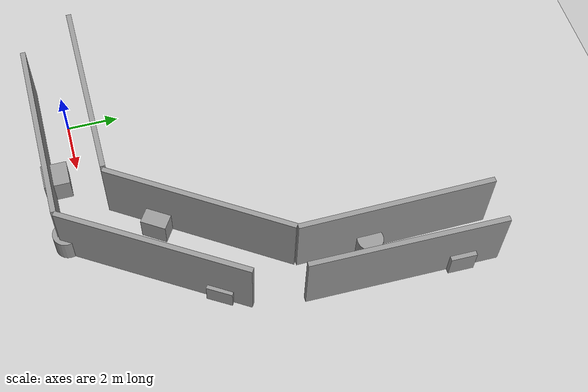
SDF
<sdf version="1.4">
 <world name="default">
  <light name="sun" type="directional">
   <pose>0 0 10 0 -0 0</pose>
   <diffuse>0.8 0.8 0.8 1</diffuse>
   <specular>0.2 0.2 0.2 1</specular>
   <attenuation>
    <range>1000</range>
    <constant>0.9</constant>
    <linear>0.01</linear>
    <quadratic>0.001</quadratic>
   </attenuation>
   <direction>-0.5 0.1 -0.9</direction>
  </light>
  <model name="ground_plane">
   <static>1</static>
   <link name="link">
    <collision name="collision">
     <geometry><plane><normal>0 0 1</normal><size>100 100</size></plane></geometry>
     <surface><friction><ode><mu>100</mu><mu2>50</mu2></ode></friction></surface>
    </collision>
    <visual name="visual">
     <cast_shadows>0</cast_shadows>
     <geometry><plane><normal>0 0 1</normal><size>100 100</size></plane></geometry>
     <material>
      <script><uri>file://media/materials/scripts/gazebo.material</uri><name>Gazebo/Grey</name></script>
     </material>
    </visual>
    <velocity_decay><linear>0</linear><angular>0</angular></velocity_decay>
   </link>
  </model>
  <physics type="ode">
   <max_step_size>0.001</max_step_size>
   <real_time_factor>1</real_time_factor>
   <real_time_update_rate>1000</real_time_update_rate>
   <gravity>0 0 -9.8</gravity>
  </physics>
  <scene><ambient>0.4 0.4 0.4 1</ambient><background>0.7 0.7 0.7 1</background><shadows>1</shadows></scene>
  <spherical_coordinates>
   <surface_model>EARTH_WGS84</surface_model>
   <latitude_deg>0</latitude_deg>
   <longitude_deg>0</longitude_deg>
   <elevation>0</elevation>
   <heading_deg>0</heading_deg>
  </spherical_coordinates>
  <model name="grey_wall">
   <static>1</static>
   <link name="link">
    <pose>0 0 1.4 0 -0 0</pose>
    <collision name="collision"><geometry><box><size>7.5 0.2 2.8</size></box></geometry></collision>
    <visual name="visual">
     <cast_shadows>0</cast_shadows>
     <geometry><box><size>7.5 0.2 2.8</size></box></geometry>
     <material>
      <script>
       <uri>model://grey_wall/materials/scripts</uri>
       <uri>model://grey_wall/materials/textures</uri>
       <name>vrc/grey_wall</name>
      </script>
     </material>
    </visual>
    <velocity_decay><linear>0</linear><angular>0</angular></velocity_decay>
   </link>
   <pose>0.226846 1 0 0 -0 0</pose>
  </model>
  <model name="grey_wall_0">
   <static>1</static>
   <link name="link">
    <pose>0 0 1.4 0 -0 0</pose>
    <collision name="collision"><geometry><box><size>7.5 0.2 2.8</size></box></geometry></collision>
    <visual name="visual">
     <cast_shadows>0</cast_shadows>
     <geometry><box><size>7.5 0.2 2.8</size></box></geometry>
     <material>
      <script>
       <uri>model://grey_wall/materials/scripts</uri>
       <uri>model://grey_wall/materials/textures</uri>
       <name>vrc/grey_wall</name>
      </script>
     </material>
    </visual>
    <velocity_decay><linear>0</linear><angular>0</angular></velocity_decay>
   </link>
   <pose>1.69471 -1.06844 0 0 -0 0</pose>
  </model>
  <model name="grey_wall_1">
   <static>1</static>
   <link name="link">
    <pose>0 0 1.4 0 -0 0</pose>
    <collision name="collision"><geometry><box><size>7.5 0.2 2.8</size></box></geometry></collision>
    <visual name="visual">
     <cast_shadows>0</cast_shadows>
     <geometry><box><size>7.5 0.2 2.8</size></box></geometry>
     <material>
      <script>
       <uri>model://grey_wall/materials/scripts</uri>
       <uri>model://grey_wall/materials/textures</uri>
       <name>vrc/grey_wall</name>
      </script>
     </material>
    </visual>
    <velocity_decay><linear>0</linear><angular>0</angular></velocity_decay>
   </link>
   <pose>6.1599 4.08742 0 0 -0 0.988554</pose>
  </model>
  <model name="grey_wall_2">
   <static>1</static>
   <link name="link">
    <pose>0 0 1.4 0 -0 0</pose>
    <collision name="collision"><geometry><box><size>7.5 0.2 2.8</size></box></geometry></collision>
    <visual name="visual">
     <cast_shadows>0</cast_shadows>
     <geometry><box><size>7.5 0.2 2.8</size></box></geometry>
     <material>
      <script>
       <uri>model://grey_wall/materials/scripts</uri>
       <uri>model://grey_wall/materials/textures</uri>
       <name>vrc/grey_wall</name>
      </script>
     </material>
    </visual>
    <velocity_decay><linear>0</linear><angular>0</angular></velocity_decay>
   </link>
   <pose>7.51387 2.09434 0 0 -0 1.00298</pose>
  </model>
  <model name="unit_box_1">
   <pose>2.70662 -0.830688 0.499997 4.03897e-28 1e-06 -3e-06</pose>
   <link name="link">
    <inertial>
     <mass>1</mass>
     <inertia><ixx>1</ixx><ixy>0</ixy><ixz>0</ixz><iyy>1</iyy><iyz>0</iyz><izz>1</izz></inertia>
    </inertial>
    <collision name="collision"><geometry><box><size>1 0.236622 1</size></box></geometry></collision>
    <visual name="visual">
     <geometry><box><size>1 1 1</size></box></geometry>
     <material>
      <script><uri>file://media/materials/scripts/gazebo.material</uri><name>Gazebo/Grey</name></script>
     </material>
    </visual>
    <velocity_decay><linear>0</linear><angular>0</angular></velocity_decay>
   </link>
   <static>0</static>
  </model>
  <model name="unit_box_2">
   <pose>5.44773 2.61254 0.499991 -2e-06 2.11758e-22 -0.582242</pose>
   <link name="link">
    <inertial>
     <mass>1</mass>
     <inertia><ixx>1</ixx><ixy>0</ixy><ixz>0</ixz><iyy>1</iyy><iyz>0</iyz><izz>1</izz></inertia>
    </inertial>
    <collision name="collision"><geometry><box><size>0.232395 1 1</size></box></geometry></collision>
    <visual name="visual">
     <geometry><box><size>1 1 1</size></box></geometry>
     <material>
      <script><uri>file://media/materials/scripts/gazebo.material</uri><name>Gazebo/Grey</name></script>
     </material>
    </visual>
    <velocity_decay><linear>0</linear><angular>0</angular></velocity_decay>
   </link>
   <static>0</static>
  </model>
  <model name="unit_cylinder_1">
   <pose>5.37387 -0.868217 0.499997 0 0 -0.000272</pose>
   <link name="link">
    <inertial>
     <mass>1</mass>
     <inertia><ixx>1</ixx><ixy>0</ixy><ixz>0</ixz><iyy>1</iyy><iyz>0</iyz><izz>1</izz></inertia>
    </inertial>
    <collision name="collision">
     <geometry><cylinder><radius>0.100217</radius><length>1</length></cylinder></geometry>
    </collision>
    <visual name="visual">
     <geometry><cylinder><radius>0.5</radius><length>1</length></cylinder></geometry>
     <material>
      <script><uri>file://media/materials/scripts/gazebo.material</uri><name>Gazebo/Grey</name></script>
     </material>
    </visual>
    <velocity_decay><linear>0</linear><angular>0</angular></velocity_decay>
   </link>
   <static>0</static>
  </model>
  <model name="grey_wall_3">
   <static>1</static>
   <link name="link">
    <pose>0 0 1.4 0 -0 0</pose>
    <collision name="collision"><geometry><box><size>7.5 0.2 2.8</size></box></geometry></collision>
    <visual name="visual">
     <cast_shadows>0</cast_shadows>
     <geometry><box><size>7.5 0.2 2.8</size></box></geometry>
     <material>
      <script>
       <uri>model://grey_wall/materials/scripts</uri>
       <uri>model://grey_wall/materials/textures</uri>
       <name>vrc/grey_wall</name>
      </script>
     </material>
    </visual>
    <velocity_decay><linear>0</linear><angular>0</angular></velocity_decay>
   </link>
   <pose>8.22804 10.992 0 0 -0 1.57753</pose>
  </model>
  <model name="grey_wall_4">
   <static>1</static>
   <link name="link">
    <pose>0 0 1.4 0 -0 0</pose>
    <collision name="collision"><geometry><box><size>7.5 0.2 2.8</size></box></geometry></collision>
    <visual name="visual">
     <cast_shadows>0</cast_shadows>
     <geometry><box><size>7.5 0.2 2.8</size></box></geometry>
     <material>
      <script>
       <uri>model://grey_wall/materials/scripts</uri>
       <uri>model://grey_wall/materials/textures</uri>
       <name>vrc/grey_wall</name>
      </script>
     </material>
    </visual>
    <velocity_decay><linear>0</linear><angular>0</angular></velocity_decay>
   </link>
   <pose>9.83366 10.9032 0 0 -0 1.56</pose>
  </model>
  <model name="unit_box_3">
   <pose>8.65904 4.35964 0.315426 2.63182 1.57079 -2.63397</pose>
   <link name="link">
    <inertial>
     <mass>1</mass>
     <inertia><ixx>1</ixx><ixy>0</ixy><ixz>0</ixz><iyy>1</iyy><iyz>0</iyz><izz>1</izz></inertia>
    </inertial>
    <collision name="collision"><geometry><box><size>0.630853 0.29117 1</size></box></geometry></collision>
    <visual name="visual">
     <geometry><box><size>1 1 1</size></box></geometry>
     <material>
      <script><uri>file://media/materials/scripts/gazebo.material</uri><name>Gazebo/Grey</name></script>
     </material>
    </visual>
    <velocity_decay><linear>0</linear><angular>0</angular></velocity_decay>
   </link>
   <static>0</static>
  </model>
  <model name="unit_cylinder_2">
   <pose>8.48845 10.0301 0.499994 -0 -0 -0</pose>
   <link name="link">
    <inertial>
     <mass>1</mass>
     <inertia><ixx>1</ixx><ixy>0</ixy><ixz>0</ixz><iyy>1</iyy><iyz>0</iyz><izz>1</izz></inertia>
    </inertial>
    <collision name="collision">
     <geometry><cylinder><radius>0.153918</radius><length>1</length></cylinder></geometry>
    </collision>
    <visual name="visual">
     <geometry><cylinder><radius>0.5</radius><length>1</length></cylinder></geometry>
     <material>
      <script><uri>file://media/materials/scripts/gazebo.material</uri><name>Gazebo/Grey</name></script>
     </material>
    </visual>
    <velocity_decay><linear>0</linear><angular>0</angular></velocity_decay>
   </link>
   <static>0</static>
  </model>
  <model name="unit_box_4">
   <pose>9.64173 13.1352 0.5 0 -0 1.55841</pose>
   <link name="link">
    <inertial>
     <mass>1</mass>
     <inertia><ixx>1</ixx><ixy>0</ixy><ixz>0</ixz><iyy>1</iyy><iyz>0</iyz><izz>1</izz></inertia>
    </inertial>
    <collision name="collision"><geometry><box><size>0.595786 0.198858 1</size></box></geometry></collision>
    <visual name="visual">
     <geometry><box><size>1 1 1</size></box></geometry>
     <material>
      <script><uri>file://media/materials/scripts/gazebo.material</uri><name>Gazebo/Grey</name></script>
     </material>
    </visual>
    <velocity_decay><linear>0</linear><angular>0</angular></velocity_decay>
   </link>
   <static>0</static>
  </model>
 </world>
</sdf>
